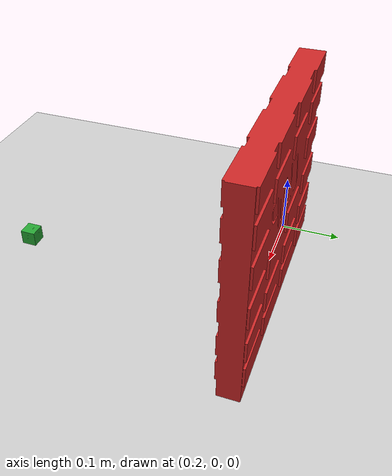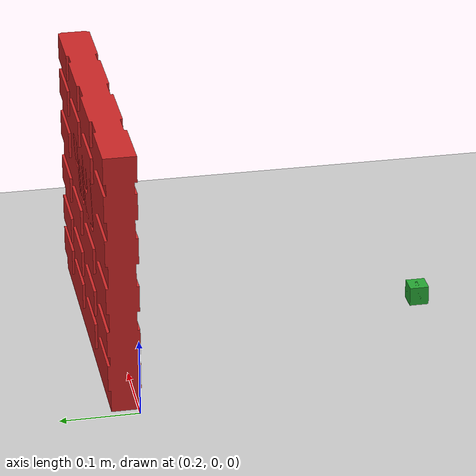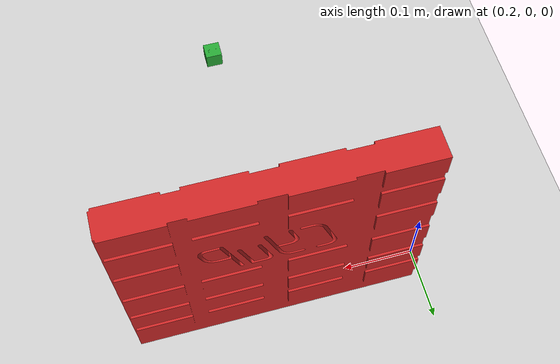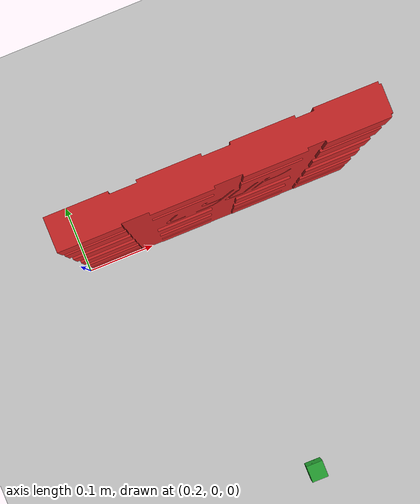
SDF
<?xml version="1.0" ?>
<sdf version="1.6">
  <world name="panda_pick_and_place">

  <include>
      <uri>model://wall</uri>
      <pose>0.4 0.0 0.0 0. -0 -1.5708</pose>
      <static>1</static>
    </include>

    <include>
      <uri>model://sun</uri>
    </include>
    <include>
      <uri>model://ground_plane</uri>
    </include>

    <include>
      <uri>model://stone</uri>
      <pose>0.4 -0.4 0.01 0.0 0.0 0.0</pose>
    </include>
  </world>-->

</sdf>

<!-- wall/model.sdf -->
<sdf version='1.6'>
  <model name='table'>
    <link name='link'>
      <pose>0 0 0.0 0 -0 0</pose>
      <inertial>
        <pose>0 0 0 0 -0 0</pose>
        <mass>10</mass>
        <inertia>
          <ixx>0.166667</ixx>
          <ixy>0</ixy>
          <ixz>0</ixz>
          <iyy>0.166667</iyy>
          <iyz>0</iyz>
          <izz>0.166667</izz>
        </inertia>
      </inertial>
      <self_collide>0</self_collide>
      <enable_wind>0</enable_wind>
      <kinematic>0</kinematic>
      <visual name='visual'>
        <pose>0 0 0 0 -0 0</pose>
        <geometry>
          <mesh>
              <uri>parts/wall.dae</uri>
              <scale>1 1 1</scale>
          </mesh>
        </geometry>
        <material>
          <script>
            <name>Gazebo/Red</name>
            <uri>file://media/materials/scripts/gazebo.material</uri>
          </script>
          <shader type='pixel'/>
        </material>
        <pose>0 0 0 0 -0 0</pose>
        <transparency>0</transparency>
        <cast_shadows>1</cast_shadows>
      </visual>
      <collision name='collision'>
        <laser_retro>0</laser_retro>
        <max_contacts>10</max_contacts>
        <pose>0 0 0 0 -0 0</pose>
        <geometry>
          <mesh>
              <uri>parts/wall.dae</uri>
              <scale>1 1 1</scale>
          </mesh>
        </geometry>
        <surface>
          <friction>
            <ode>
              <mu>1</mu>
              <mu2>1</mu2>
              <fdir1>0 0 0</fdir1>
              <slip1>0</slip1>
              <slip2>0</slip2>
            </ode>
            <torsional>
              <coefficient>1</coefficient>
              <patch_radius>0</patch_radius>
              <surface_radius>0</surface_radius>
              <use_patch_radius>1</use_patch_radius>
              <ode>
                <slip>0</slip>
              </ode>
            </torsional>
          </friction>
          <bounce>
            <restitution_coefficient>0</restitution_coefficient>
            <threshold>1e+06</threshold>
          </bounce>
          <contact>
            <collide_without_contact>0</collide_without_contact>
            <collide_without_contact_bitmask>1</collide_without_contact_bitmask>
            <collide_bitmask>1</collide_bitmask>
            <ode>
              <soft_cfm>0</soft_cfm>
              <soft_erp>0.2</soft_erp>
              <kp>1e+13</kp>
              <kd>1</kd>
              <max_vel>0.01</max_vel>
              <min_depth>0</min_depth>
            </ode>
            <bullet>
              <split_impulse>1</split_impulse>
              <split_impulse_penetration_threshold>-0.01</split_impulse_penetration_threshold>
              <soft_cfm>0</soft_cfm>
              <soft_erp>0.2</soft_erp>
              <kp>1e+13</kp>
              <kd>1</kd>
            </bullet>
          </contact>
        </surface>
      </collision>
    </link>
    <static>1</static>
    <allow_auto_disable>1</allow_auto_disable>
  </model>
</sdf>

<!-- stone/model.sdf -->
<sdf version='1.6'>
  <model name='stone'>
    <link name='link'>
      <pose>0.0 0.0 0 0 -0 0</pose>
      <inertial>
        <!--NOTE: Uses limestone density (i.e 2000 kg/m^3) to calculate the mass
        see https://en.wikipedia.org/wiki/Limestone
        -->
        <mass>0.034349</mass>
        <inertia>
          <ixx>0.000009</ixx>
          <ixy>0</ixy>
          <ixz>0</ixz>
          <iyy>0.000009</iyy>
          <iyz>0</iyz>
          <izz>0.000004</izz>
        </inertia>
        <pose>0 0 0 0 -0 0</pose>
      </inertial>
        <self_collide>0</self_collide>
      <kinematic>0</kinematic>
      <enable_wind>0</enable_wind>
      <pose>0 0 0 0 -0 0</pose>
      <visual name='visual'>
        <geometry>
          <mesh>
              <uri>parts/cube4.dae</uri>
              <scale>1 1 1</scale>
          </mesh>
        </geometry>
        <material>
          <script>
            <uri>file://media/materials/scripts/gazebo.material</uri>
            <name>Gazebo/Green</name>
          </script>
          <shader type='pixel'/>
        </material>
        <pose>0 0 0 0 -0 0</pose>
        <transparency>0</transparency>
        <cast_shadows>1</cast_shadows>
      </visual>
      <collision name='collision'>
        <laser_retro>0</laser_retro>
        <max_contacts>10</max_contacts>
        <pose>0 0 0 0 -0 0</pose>
        <geometry>
          <mesh>
              <uri>parts/cube4.dae</uri>
              <scale>1 1 1</scale>
          </mesh>
        </geometry>
        <surface>
          <!--NOTE: Uses dynamic friction of brick on a wood surface
          see https://www.engineeringtoolbox.com/friction-coefficients-d_778.html
          -->
          <friction>
            <ode>
              <mu>0.7</mu>
              <mu2>0.7</mu2>
              <fdir1>0 0 0</fdir1>
              <slip1>0</slip1>
              <slip2>0</slip2>
            </ode>
            <torsional>
              <coefficient>1</coefficient>
              <patch_radius>0</patch_radius>
              <surface_radius>0</surface_radius>
              <use_patch_radius>1</use_patch_radius>
              <ode>
                <slip>0</slip>
              </ode>
            </torsional>
          </friction>
          <bounce>
            <restitution_coefficient>0</restitution_coefficient>
            <threshold>1e+06</threshold>
          </bounce>
          <contact>
            <collide_without_contact>0</collide_without_contact>
            <collide_without_contact_bitmask>1</collide_without_contact_bitmask>
            <collide_bitmask>1</collide_bitmask>
            <ode>
              <soft_cfm>0</soft_cfm>
              <soft_erp>0.2</soft_erp>
              <kp>1e+13</kp>
              <kd>1</kd>
              <max_vel>0</max_vel>
              <min_depth>0.003</min_depth>
            </ode>
            <bullet>
              <split_impulse>1</split_impulse>
              <split_impulse_penetration_threshold>-0.01</split_impulse_penetration_threshold>
              <soft_cfm>0</soft_cfm>
              <soft_erp>0.2</soft_erp>
              <kp>1e+13</kp>
              <kd>1</kd>
            </bullet>
          </contact>
        </surface>
      </collision>
    </link>
    <static>0</static>
    <allow_auto_disable>1</allow_auto_disable>
  </model>
</sdf>
